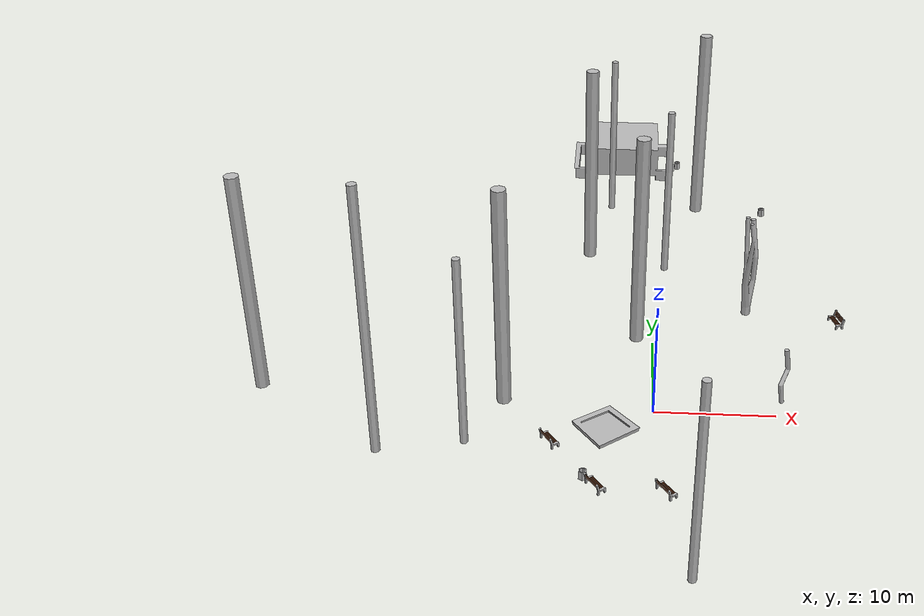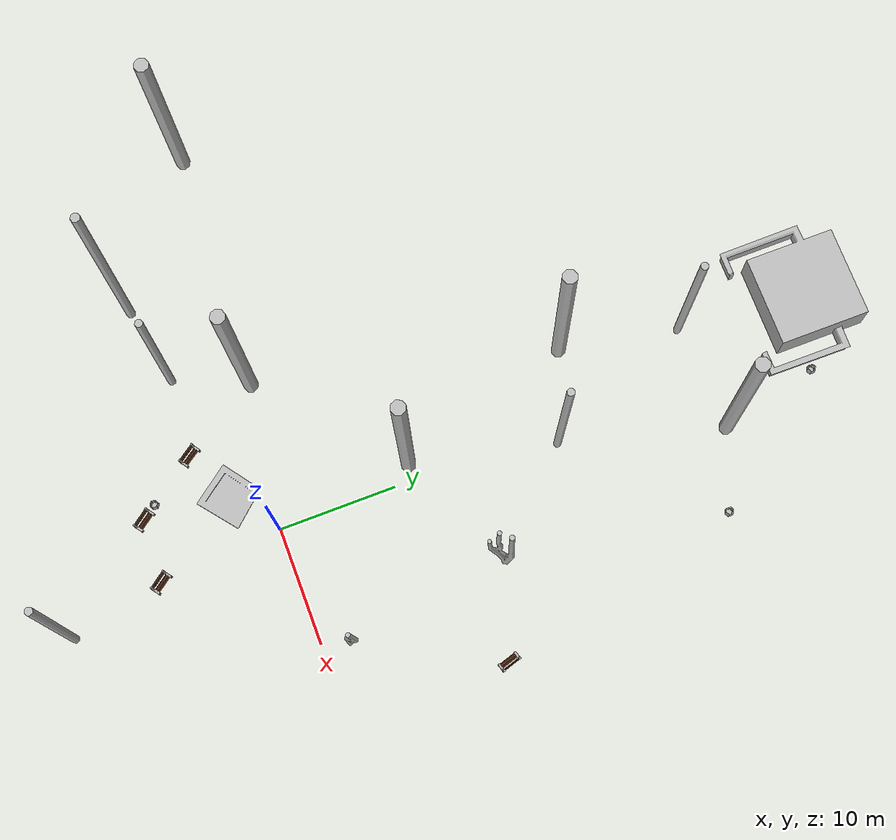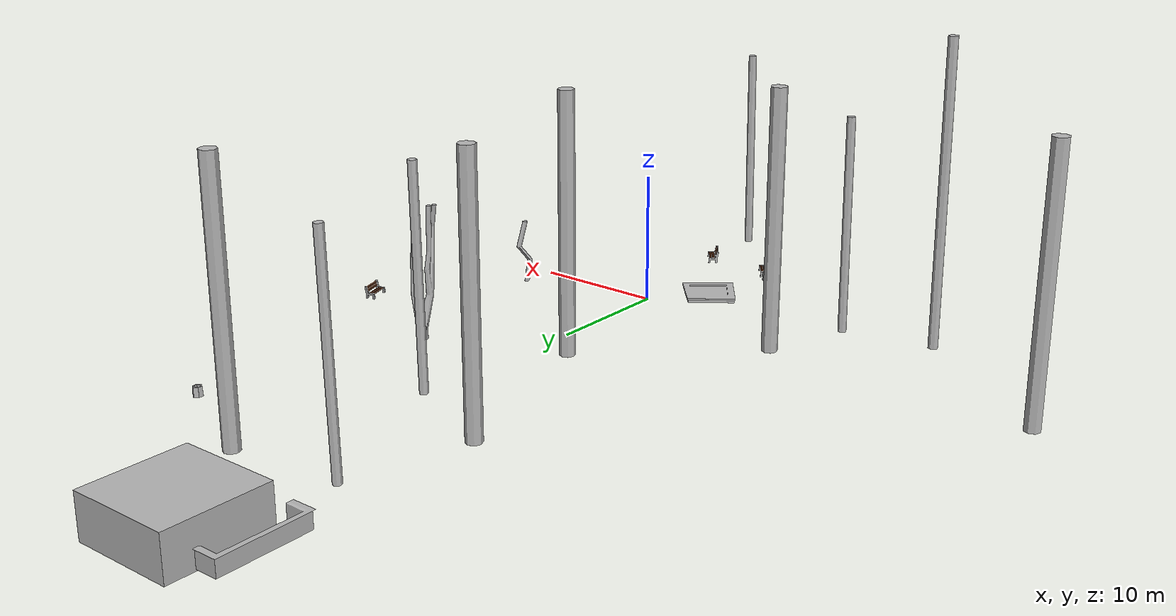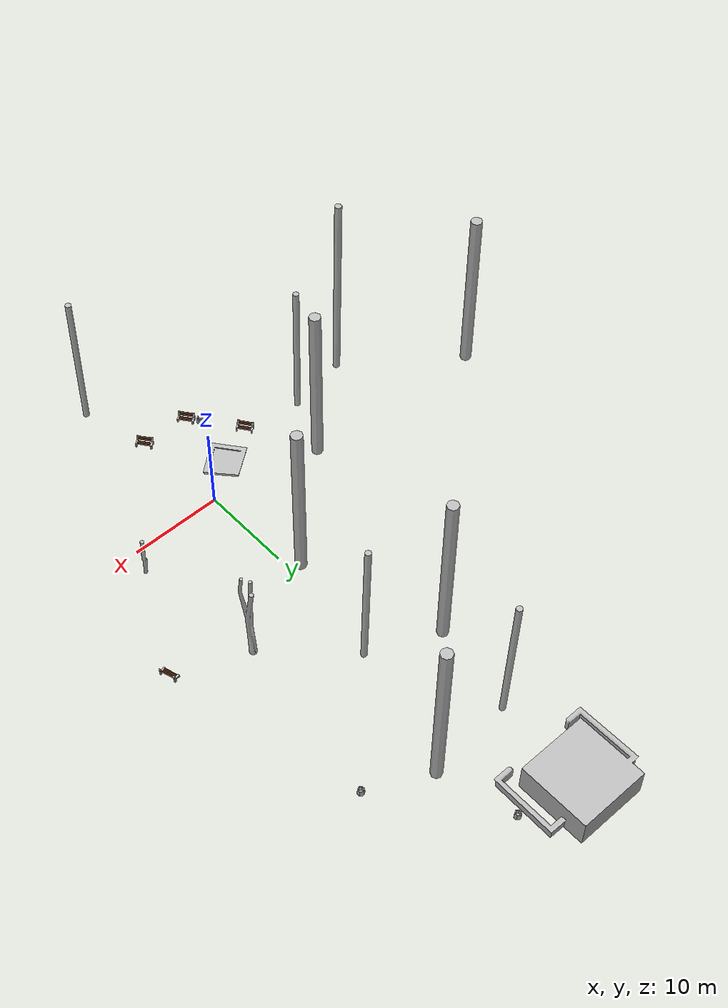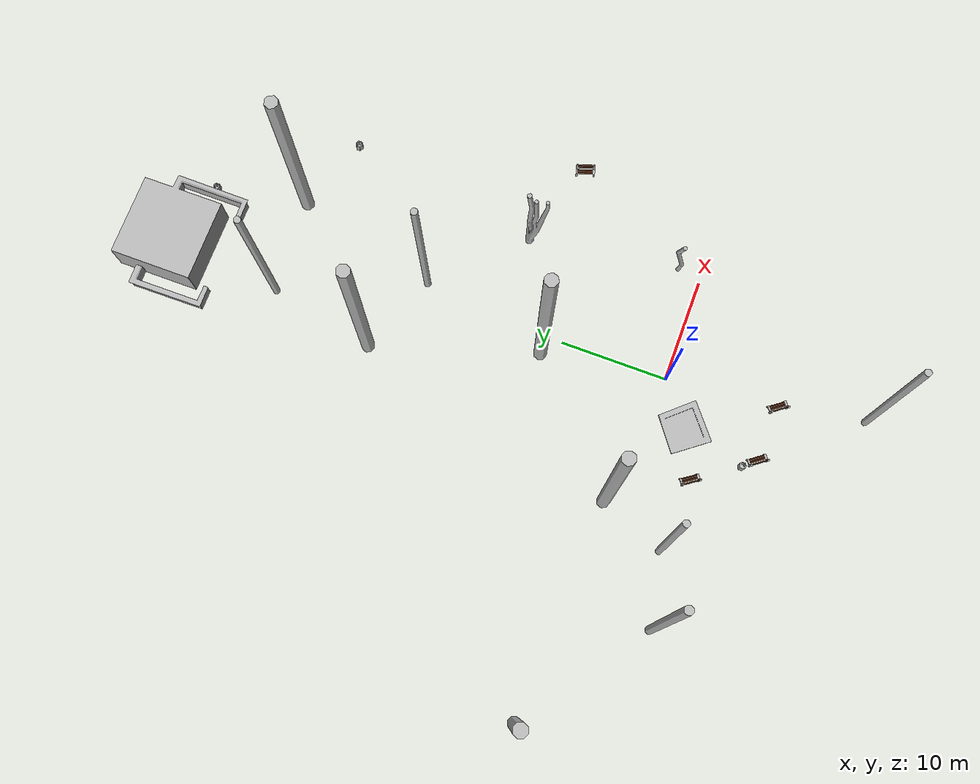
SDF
<sdf version="1.6">
 <world name="default">
  <model name="park_trash">
   <static>1</static>
   <link name="link">
    <collision name="collision">
     <geometry><mesh><uri>model://park_trash/meshes/collision.dae</uri></mesh></geometry>
    </collision>
    <visual name="visual">
     <geometry><mesh><uri>model://park_trash/meshes/park_trash.dae</uri></mesh></geometry>
    </visual>
   </link>
   <pose>-5.41039 -8.96156 0.338634 0 -0 0</pose>
  </model>
  <model name="park_trash_2">
   <static>1</static>
   <link name="link">
    <collision name="collision">
     <geometry><mesh><uri>model://park_trash/meshes/collision.dae</uri></mesh></geometry>
    </collision>
    <visual name="visual">
     <geometry><mesh><uri>model://park_trash/meshes/park_trash.dae</uri></mesh></geometry>
    </visual>
   </link>
   <pose>11.6415 34.7393 0.34503 0 -0 0</pose>
  </model>
  <model name="park_toilet">
   <static>1</static>
   <link name="link">
    <collision name="collision">
     <geometry><mesh><uri>model://park_toilet/meshes/collision.dae</uri></mesh></geometry>
    </collision>
    <visual name="visual">
     <geometry><mesh><uri>model://park_toilet/meshes/park_toilet.dae</uri></mesh></geometry>
    </visual>
   </link>
   <pose>-3.27439 44.7071 0.456352 0 -0 0</pose>
  </model>
  <model name="park_trash_3">
   <static>1</static>
   <link name="link">
    <collision name="collision">
     <geometry><mesh><uri>model://park_trash/meshes/collision.dae</uri></mesh></geometry>
    </collision>
    <visual name="visual">
     <geometry><mesh><uri>model://park_trash/meshes/park_trash.dae</uri></mesh></geometry>
    </visual>
   </link>
   <pose>2.93061 45.7761 0.348938 0 -0 0</pose>
  </model>
  <model name="park_tree_2_5">
   <static>1</static>
   <link name="link">
    <collision name="collision">
     <geometry><mesh><uri>model://park_tree_2/meshes/collision.dae</uri></mesh></geometry>
    </collision>
    <visual name="visual">
     <geometry><mesh><uri>model://park_tree_2/meshes/park_tree_2.dae</uri></mesh></geometry>
    </visual>
   </link>
   <pose>2.59224 -18.3323 0 0 -0 0</pose>
  </model>
  <model name="park_tree_5_1">
   <static>1</static>
   <link name="link">
    <collision name="collision">
     <geometry><mesh><uri>model://park_tree_5/meshes/collision.dae</uri></mesh></geometry>
    </collision>
    <visual name="visual">
     <geometry><mesh><uri>model://park_tree_5/meshes/park_tree_5.dae</uri></mesh></geometry>
    </visual>
   </link>
   <pose>-21.9536 -5.84664 0 0 -0 0</pose>
  </model>
  <model name="park_tree_1_7">
   <static>1</static>
   <link name="link">
    <collision name="collision">
     <geometry><mesh><uri>model://park_tree_1/meshes/collision.dae</uri></mesh></geometry>
    </collision>
    <visual name="visual">
     <geometry><mesh><uri>model://park_tree_1/meshes/park_tree_1.dae</uri></mesh></geometry>
    </visual>
   </link>
   <pose>-33.4904 2.52473 0 0 -0 0</pose>
  </model>
  <model name="park_tree_1_8">
   <static>1</static>
   <link name="link">
    <collision name="collision">
     <geometry><mesh><uri>model://park_tree_1/meshes/collision.dae</uri></mesh></geometry>
    </collision>
    <visual name="visual">
     <geometry><mesh><uri>model://park_tree_1/meshes/park_tree_1.dae</uri></mesh></geometry>
    </visual>
   </link>
   <pose>-12.5302 1.64774 0 0 -0 0</pose>
  </model>
  <model name="park_tree_2_9">
   <static>1</static>
   <link name="link">
    <collision name="collision">
     <geometry><mesh><uri>model://park_tree_2/meshes/collision.dae</uri></mesh></geometry>
    </collision>
    <visual name="visual">
     <geometry><mesh><uri>model://park_tree_2/meshes/park_tree_2.dae</uri></mesh></geometry>
    </visual>
   </link>
   <pose>-15.0889 -4.44147 0 0 -0 0</pose>
  </model>
  <model name="park_tree_1_13">
   <static>1</static>
   <link name="link">
    <collision name="collision">
     <geometry><mesh><uri>model://park_tree_1/meshes/collision.dae</uri></mesh></geometry>
    </collision>
    <visual name="visual">
     <geometry><mesh><uri>model://park_tree_1/meshes/park_tree_1.dae</uri></mesh></geometry>
    </visual>
   </link>
   <pose>4.81141 37.4696 0 0 -0 0</pose>
  </model>
  <model name="park_tree_2_13">
   <static>1</static>
   <link name="link">
    <collision name="collision">
     <geometry><mesh><uri>model://park_tree_2/meshes/collision.dae</uri></mesh></geometry>
    </collision>
    <visual name="visual">
     <geometry><mesh><uri>model://park_tree_2/meshes/park_tree_2.dae</uri></mesh></geometry>
    </visual>
   </link>
   <pose>-4.36651 36.8114 0 0 -0 0</pose>
  </model>
  <model name="park_tree_1_15">
   <static>1</static>
   <link name="link">
    <collision name="collision">
     <geometry><mesh><uri>model://park_tree_1/meshes/collision.dae</uri></mesh></geometry>
    </collision>
    <visual name="visual">
     <geometry><mesh><uri>model://park_tree_1/meshes/park_tree_1.dae</uri></mesh></geometry>
    </visual>
   </link>
   <pose>-6.32181 26.8421 0 0 -0 0</pose>
  </model>
  <model name="park_tree_2_16">
   <static>1</static>
   <link name="link">
    <collision name="collision">
     <geometry><mesh><uri>model://park_tree_2/meshes/collision.dae</uri></mesh></geometry>
    </collision>
    <visual name="visual">
     <geometry><mesh><uri>model://park_tree_2/meshes/park_tree_2.dae</uri></mesh></geometry>
    </visual>
   </link>
   <pose>1.20333 23.8128 0 0 -0 0</pose>
  </model>
  <model name="park_tree_3_7">
   <static>1</static>
   <link name="link">
    <collision name="collision">
     <geometry><mesh><uri>model://park_tree_3/meshes/collision.dae</uri></mesh></geometry>
    </collision>
    <visual name="visual">
     <geometry><mesh><uri>model://park_tree_3/meshes/park_tree_3.dae</uri></mesh></geometry>
    </visual>
   </link>
   <pose>10.6852 2.2791 0 0 -0 0</pose>
  </model>
  <model name="park_tree_1_16">
   <static>1</static>
   <link name="link">
    <collision name="collision">
     <geometry><mesh><uri>model://park_tree_1/meshes/collision.dae</uri></mesh></geometry>
    </collision>
    <visual name="visual">
     <geometry><mesh><uri>model://park_tree_1/meshes/park_tree_1.dae</uri></mesh></geometry>
    </visual>
   </link>
   <pose>-1.47107 11.6585 0 0 -0 0</pose>
  </model>
  <model name="park_tree_4_3">
   <static>1</static>
   <link name="link">
    <collision name="collision">
     <geometry><mesh><uri>model://park_tree_4/meshes/collision.dae</uri></mesh></geometry>
    </collision>
    <visual name="visual">
     <geometry><mesh><uri>model://park_tree_4/meshes/park_tree_4.dae</uri></mesh></geometry>
    </visual>
   </link>
   <pose>8.12315 16.3792 0 0 -0 0</pose>
  </model>
  <model name="park_sandpit">
   <static>1</static>
   <link name="link">
    <collision name="collision">
     <geometry><mesh><uri>model://park_sandpit/meshes/collision.dae</uri></mesh></geometry>
    </collision>
    <visual name="visual">
     <geometry><mesh><uri>model://park_sandpit/meshes/park_sandpit.dae</uri></mesh></geometry>
    </visual>
   </link>
   <pose>-3.84782 -2.92634 0.554216 0 -0 0.675389</pose>
  </model>
  <model name="park_bench_0">
   <static>1</static>
   <link name="link">
    <collision name="collision">
     <geometry><mesh><uri>model://park_bench/meshes/collision.dae</uri></mesh></geometry>
    </collision>
    <visual name="visual">
     <geometry><mesh><uri>model://park_bench/meshes/park_bench.dae</uri></mesh></geometry>
    </visual>
   </link>
   <pose>-8.18373 -4.90223 0.380927 0 0 -2.53296</pose>
  </model>
  <model name="park_bench_0_clone">
   <static>1</static>
   <link name="link">
    <collision name="collision">
     <geometry><mesh><uri>model://park_bench/meshes/collision.dae</uri></mesh></geometry>
    </collision>
    <visual name="visual">
     <geometry><mesh><uri>model://park_bench/meshes/park_bench.dae</uri></mesh></geometry>
    </visual>
   </link>
   <pose>-4.39227 -10.0266 0.380927 0 0 -2.5062</pose>
  </model>
  <model name="park_bench_0_clone_clone">
   <static>1</static>
   <link name="link">
    <collision name="collision">
     <geometry><mesh><uri>model://park_bench/meshes/collision.dae</uri></mesh></geometry>
    </collision>
    <visual name="visual">
     <geometry><mesh><uri>model://park_bench/meshes/park_bench.dae</uri></mesh></geometry>
    </visual>
   </link>
   <pose>0.940675 -10.2983 0.380927 0 0 -2.5062</pose>
  </model>
  <model name="park_bench_0_clone_0_clone_clone_clone_0">
   <static>1</static>
   <link name="link">
    <collision name="collision">
     <geometry><mesh><uri>model://park_bench/meshes/collision.dae</uri></mesh></geometry>
    </collision>
    <visual name="visual">
     <geometry><mesh><uri>model://park_bench/meshes/park_bench.dae</uri></mesh></geometry>
    </visual>
   </link>
   <pose>16.5976 13.6225 0.380927 0 -0 0.287454</pose>
  </model>
 </world>
</sdf>
